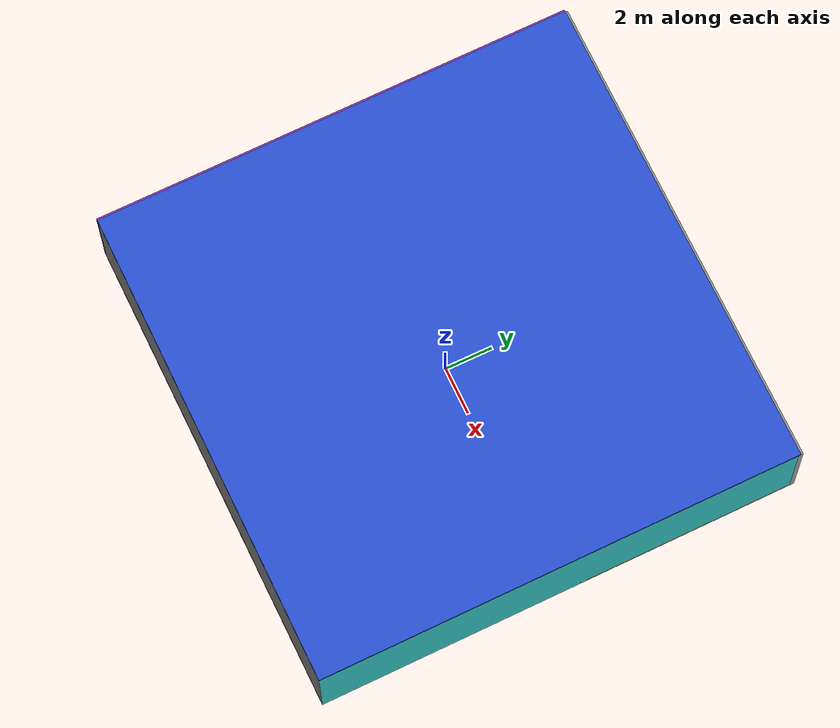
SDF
<sdf version="1.4">
 <world name="default">
  <physics type="ode">
   <max_step_size>0.001</max_step_size>
   <real_time_factor>1</real_time_factor>
   <real_time_update_rate>1000</real_time_update_rate>
   <gravity>0 0 -9.8</gravity>
  </physics>
  <scene><ambient>0.4 0.4 0.4 1</ambient><background>0.7 0.7 0.7 1</background><shadows>1</shadows></scene>
  <model name="Surrounding">
   <static>1</static>
   <link name="Ceiling">
    <collision name="Ceiling_Collision"><geometry><box><size>20 20 0.1</size></box></geometry></collision>
    <visual name="Ceiling_Visual">
     <geometry><box><size>20 20 0.1</size></box></geometry>
     <material>
      <script><uri>file://media/materials/scripts/gazebo.material</uri><name>Gazebo/BlueGlow</name></script>
     </material>
    </visual>
    <pose>0 0 4.05 0 0 0</pose>
   </link>
   <link name="Wall_South">
    <collision name="Wall_South_Collision">
     <geometry><box><size>20 0 4</size></box></geometry>
     <pose>0 0 2 0 -0 0</pose>
    </collision>
    <visual name="Wall_South_Visual">
     <pose>0 0 2 0 -0 0</pose>
     <geometry><box><size>20 0 4</size></box></geometry>
     <material>
      <script><uri>file://media/materials/scripts/gazebo.material</uri><name>Gazebo/GreyGradientSky</name></script>
     </material>
    </visual>
    <velocity_decay><linear>0</linear><angular>0</angular></velocity_decay>
    <pose>0 -10 0 0 -0 0</pose>
   </link>
   <link name="Wall_East">
    <collision name="Wall_21_Collision">
     <geometry><box><size>20 0 4</size></box></geometry>
     <pose>0 0 2 0 -0 0</pose>
    </collision>
    <visual name="Wall_21_Visual">
     <pose>0 0 2 0 -0 0</pose>
     <geometry><box><size>20 0 4</size></box></geometry>
     <material>
      <script><uri>file://media/materials/scripts/gazebo.material</uri><name>Gazebo/TurquoiseGlow</name></script>
     </material>
    </visual>
    <velocity_decay><linear>0</linear><angular>0</angular></velocity_decay>
    <pose>10 0 0 0 -0 1.5708</pose>
   </link>
   <link name="Wall_North">
    <collision name="Wall_22_Collision">
     <geometry><box><size>20 0.2 4</size></box></geometry>
     <pose>0 0 2 0 -0 0</pose>
    </collision>
    <visual name="Wall_22_Visual">
     <pose>0 0 2 0 -0 0</pose>
     <geometry><box><size>20 0.2 4</size></box></geometry>
     <material>
      <script><uri>file://media/materials/scripts/gazebo.material</uri><name>Gazebo/Grey</name></script>
     </material>
    </visual>
    <velocity_decay><linear>0</linear><angular>0</angular></velocity_decay>
    <pose>0 10 0 0 -0 0</pose>
   </link>
   <link name="Wall_West">
    <collision name="Wall_23_Collision">
     <geometry><box><size>20 0.2 4</size></box></geometry>
     <pose>0 0 2 0 -0 0</pose>
    </collision>
    <visual name="Wall_23_Visual">
     <pose>0 0 2 0 -0 0</pose>
     <geometry><box><size>20 0.2 4</size></box></geometry>
     <material>
      <script><uri>file://media/materials/scripts/gazebo.material</uri><name>Gazebo/Purple</name></script>
     </material>
    </visual>
    <velocity_decay><linear>0</linear><angular>0</angular></velocity_decay>
    <pose>-10 0 0 0 0 -1.5708</pose>
   </link>
   <link name="Ground_link">
    <collision name="collision">
     <pose>0 0 .05 0 -0 0</pose>
     <geometry><box><size>20 20 0.1</size></box></geometry>
    </collision>
    <visual name="visual">
     <pose>0 0 .05 0 -0 0</pose>
     <geometry><box><size>20 20 0.1</size></box></geometry>
     <material>
      <script><uri>file://media/materials/scripts/gazebo.material</uri><name>Gazebo/Gold</name></script>
     </material>
    </visual>
   </link>
   <static>1</static>
  </model>
  <spherical_coordinates>
   <surface_model>EARTH_WGS84</surface_model>
   <latitude_deg>0</latitude_deg>
   <longitude_deg>0</longitude_deg>
   <elevation>0</elevation>
   <heading_deg>0</heading_deg>
  </spherical_coordinates>
  <light name="lightball_0" type="diffuse">
   <diffuse>0.8 0.8 0.8 1</diffuse>
   <specular>0.2 0.2 0.2 1</specular>
   <attenuation>
    <range>100</range>
    <constant>0.7</constant>
    <linear>0.01</linear>
    <quadratic>0.001</quadratic>
   </attenuation>
   <direction>-0.5 0.1 -0.9</direction>
   <pose>0.457044754933 9.1698492121 3.7671161299 0 0 0</pose>
  </light>
  <light name="lightball_1" type="diffuse">
   <diffuse>0.8 0.8 0.8 1</diffuse>
   <specular>0.2 0.2 0.2 1</specular>
   <attenuation>
    <range>100</range>
    <constant>0.7</constant>
    <linear>0.01</linear>
    <quadratic>0.001</quadratic>
   </attenuation>
   <direction>-0.5 0.1 -0.9</direction>
   <pose>3.53202292633 7.97571110756 1.01761124459 0 0 0</pose>
  </light>
  <light name="lightball_2" type="diffuse">
   <diffuse>0.8 0.8 0.8 1</diffuse>
   <specular>0.2 0.2 0.2 1</specular>
   <attenuation>
    <range>100</range>
    <constant>0.7</constant>
    <linear>0.01</linear>
    <quadratic>0.001</quadratic>
   </attenuation>
   <direction>-0.5 0.1 -0.9</direction>
   <pose>7.61258744243 -1.76454577149 1.28691344922 0 0 0</pose>
  </light>
  <light name="lightball_3" type="diffuse">
   <diffuse>0.8 0.8 0.8 1</diffuse>
   <specular>0.2 0.2 0.2 1</specular>
   <attenuation>
    <range>100</range>
    <constant>0.7</constant>
    <linear>0.01</linear>
    <quadratic>0.001</quadratic>
   </attenuation>
   <direction>-0.5 0.1 -0.9</direction>
   <pose>-9.54331846673 -3.11794412242 3.53092167294 0 0 0</pose>
  </light>
  <light name="lightball_4" type="diffuse">
   <diffuse>0.8 0.8 0.8 1</diffuse>
   <specular>0.2 0.2 0.2 1</specular>
   <attenuation>
    <range>100</range>
    <constant>0.7</constant>
    <linear>0.01</linear>
    <quadratic>0.001</quadratic>
   </attenuation>
   <direction>-0.5 0.1 -0.9</direction>
   <pose>-4.80224729826 -6.59925880021 0.907482027895 0 0 0</pose>
  </light>
  <light name="lightball_5" type="diffuse">
   <diffuse>0.8 0.8 0.8 1</diffuse>
   <specular>0.2 0.2 0.2 1</specular>
   <attenuation>
    <range>100</range>
    <constant>0.7</constant>
    <linear>0.01</linear>
    <quadratic>0.001</quadratic>
   </attenuation>
   <direction>-0.5 0.1 -0.9</direction>
   <pose>2.80091869359 3.86213781421 3.28304280775 0 0 0</pose>
  </light>
  <light name="lightball_6" type="diffuse">
   <diffuse>0.8 0.8 0.8 1</diffuse>
   <specular>0.2 0.2 0.2 1</specular>
   <attenuation>
    <range>100</range>
    <constant>0.7</constant>
    <linear>0.01</linear>
    <quadratic>0.001</quadratic>
   </attenuation>
   <direction>-0.5 0.1 -0.9</direction>
   <pose>5.39056068909 -2.83767610158 1.78381997427 0 0 0</pose>
  </light>
  <light name="lightball_7" type="diffuse">
   <diffuse>0.8 0.8 0.8 1</diffuse>
   <specular>0.2 0.2 0.2 1</specular>
   <attenuation>
    <range>100</range>
    <constant>0.7</constant>
    <linear>0.01</linear>
    <quadratic>0.001</quadratic>
   </attenuation>
   <direction>-0.5 0.1 -0.9</direction>
   <pose>-9.59058161417 -9.43843983642 3.81293660773 0 0 0</pose>
  </light>
  <light name="lightball_8" type="diffuse">
   <diffuse>0.8 0.8 0.8 1</diffuse>
   <specular>0.2 0.2 0.2 1</specular>
   <attenuation>
    <range>100</range>
    <constant>0.7</constant>
    <linear>0.01</linear>
    <quadratic>0.001</quadratic>
   </attenuation>
   <direction>-0.5 0.1 -0.9</direction>
   <pose>-5.86474568884 3.24660875339 0.795223778585 0 0 0</pose>
  </light>
  <light name="lightball_9" type="diffuse">
   <diffuse>0.8 0.8 0.8 1</diffuse>
   <specular>0.2 0.2 0.2 1</specular>
   <attenuation>
    <range>100</range>
    <constant>0.7</constant>
    <linear>0.01</linear>
    <quadratic>0.001</quadratic>
   </attenuation>
   <direction>-0.5 0.1 -0.9</direction>
   <pose>0.968558805681 -0.505371483589 1.59078035633 0 0 0</pose>
  </light>
  <light name="lightball_10" type="diffuse">
   <diffuse>0.8 0.8 0.8 1</diffuse>
   <specular>0.2 0.2 0.2 1</specular>
   <attenuation>
    <range>100</range>
    <constant>0.7</constant>
    <linear>0.01</linear>
    <quadratic>0.001</quadratic>
   </attenuation>
   <direction>-0.5 0.1 -0.9</direction>
   <pose>-1.08284462714 0.969520194078 0.879943517938 0 0 0</pose>
  </light>
  <light name="lightball_11" type="diffuse">
   <diffuse>0.8 0.8 0.8 1</diffuse>
   <specular>0.2 0.2 0.2 1</specular>
   <attenuation>
    <range>100</range>
    <constant>0.7</constant>
    <linear>0.01</linear>
    <quadratic>0.001</quadratic>
   </attenuation>
   <direction>-0.5 0.1 -0.9</direction>
   <pose>7.4839571271 5.79740774149 1.44363823391 0 0 0</pose>
  </light>
  <light name="lightball_12" type="diffuse">
   <diffuse>0.8 0.8 0.8 1</diffuse>
   <specular>0.2 0.2 0.2 1</specular>
   <attenuation>
    <range>100</range>
    <constant>0.7</constant>
    <linear>0.01</linear>
    <quadratic>0.001</quadratic>
   </attenuation>
   <direction>-0.5 0.1 -0.9</direction>
   <pose>6.48026516416 -9.29862206334 2.51939273933 0 0 0</pose>
  </light>
  <include><uri>model://table</uri><pose>-5.46567012122 -5.5493539828 0 0 0 2.34868135996</pose></include>
  <include>
   <uri>model://textured_shapes</uri>
   <pose>-0.953675720889 7.90597275848 0 0 0 1.65219225244</pose>
  </include>
  <include>
   <uri>model://textured_shapes</uri>
   <pose>1.86873656102 6.54714024295 0 0 0 0.598392445116</pose>
  </include>
  <include>
   <uri>model://construction_cone</uri>
   <pose>5.15328406698 5.44356199683 0 0 0 2.27263648111</pose>
  </include>
  <include>
   <uri>model://robocup_3Dsim_goal</uri>
   <pose>5.45076594939 6.90299766956 0 0 0 2.55944934462</pose>
  </include>
 </world>
</sdf>

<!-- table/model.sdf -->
<sdf version="1.5">
  <model name="table">
    <static>true</static>
    <link name="link">
      <collision name="surface">
        <pose>0 0 1.0 0 0 0</pose>
        <geometry>
          <box>
            <size>1.5 0.8 0.03</size>
          </box>
        </geometry>
        <surface>
          <friction>
            <ode>
              <mu>0.6</mu>
              <mu2>0.6</mu2>
            </ode>
          </friction>
        </surface>
      </collision>
      <visual name="visual1">
        <pose>0 0 1.0 0 0 0</pose>
        <geometry>
          <box>
            <size>1.5 0.8 0.03</size>
          </box>
        </geometry>
        <material>
          <script>
            <uri>model://media/materials/scripts/gazebo.material</uri>
            <name>Gazebo/Wood</name>
          </script>
        </material>
      </visual>
      <collision name="front_left_leg">
        <pose>0.68 0.38 0.5 0 0 0</pose>
        <geometry>
          <cylinder>
            <radius>0.02</radius>
            <length>1.0</length>
          </cylinder>
        </geometry>
      </collision>
      <visual name="front_left_leg">
        <pose>0.68 0.38 0.5 0 0 0</pose>
        <geometry>
          <cylinder>
            <radius>0.02</radius>
            <length>1.0</length>
          </cylinder>
        </geometry>
        <material>
          <script>
            <uri>model://media/materials/scripts/gazebo.material</uri>
            <name>Gazebo/Grey</name>
          </script>
        </material>
      </visual>
      <collision name="front_right_leg">
        <pose>0.68 -0.38 0.5 0 0 0</pose>
        <geometry>
          <cylinder>
            <radius>0.02</radius>
            <length>1.0</length>
          </cylinder>
        </geometry>
      </collision>
      <visual name="front_right_leg">
        <pose>0.68 -0.38 0.5 0 0 0</pose>
        <geometry>
          <cylinder>
            <radius>0.02</radius>
            <length>1.0</length>
          </cylinder>
        </geometry>
        <material>
          <script>
            <uri>model://media/materials/scripts/gazebo.material</uri>
            <name>Gazebo/Grey</name>
          </script>
        </material>
      </visual>
      <collision name="back_right_leg">
        <pose>-0.68 -0.38 0.5 0 0 0</pose>
        <geometry>
          <cylinder>
            <radius>0.02</radius>
            <length>1.0</length>
          </cylinder>
        </geometry>
      </collision>
      <visual name="back_right_leg">
        <pose>-0.68 -0.38 0.5 0 0 0</pose>
        <geometry>
          <cylinder>
            <radius>0.02</radius>
            <length>1.0</length>
          </cylinder>
        </geometry>
        <material>
          <script>
            <uri>model://media/materials/scripts/gazebo.material</uri>
            <name>Gazebo/Grey</name>
          </script>
        </material>
      </visual>
      <collision name="back_left_leg">
        <pose>-0.68 0.38 0.5 0 0 0</pose>
        <geometry>
          <cylinder>
            <radius>0.02</radius>
            <length>1.0</length>
          </cylinder>
        </geometry>
      </collision>
      <visual name="back_left_leg">
        <pose>-0.68 0.38 0.5 0 0 0</pose>
        <geometry>
          <cylinder>
            <radius>0.02</radius>
            <length>1.0</length>
          </cylinder>
        </geometry>
        <material>
          <script>
            <uri>model://media/materials/scripts/gazebo.material</uri>
            <name>Gazebo/Grey</name>
          </script>
        </material>
      </visual>
    </link>
  </model>
</sdf>

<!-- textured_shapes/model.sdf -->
<sdf version="1.6">
  <model name="textured_shapes">
    <pose>0 0 0.5 0 0 0</pose>
    <link name="box">
      <pose>0 -1.5 0 0 0 0</pose>
      <collision name="collision">
        <geometry>
          <box>
            <size>1 1 1</size>
          </box>
        </geometry>
      </collision>
      <visual name="visual">
        <geometry>
          <box>
            <size>1 1 1</size>
          </box>
        </geometry>
        <material>
          <script>
            <uri>model://../model_source/models/textured_shapes/materials/scripts</uri>
            <uri>model://../model_source/models/textured_shapes/materials/textures</uri>
            <name>TexturedShape/Squares</name>
          </script>
        </material>
      </visual>
    </link>
    <link name="sphere">
      <collision name="collision">
        <geometry>
          <sphere>
            <radius>0.5</radius>
          </sphere>
        </geometry>
      </collision>
      <visual name="visual">
        <geometry>
          <sphere>
            <radius>0.5</radius>
          </sphere>
        </geometry>
        <material>
          <script>
            <uri>model://../model_source/models/textured_shapes/materials/scripts</uri>
            <uri>model://../model_source/models/textured_shapes/materials/textures</uri>
            <name>TexturedShape/Squares</name>
          </script>
        </material>
      </visual>
    </link>
    <link name="cylinder">
      <pose>0 1.5 0 0 0 0</pose>
      <collision name="collision">
        <geometry>
          <cylinder>
            <radius>0.5</radius>
            <length>1</length>
          </cylinder>
        </geometry>
      </collision>
      <visual name="visual">
        <geometry>
          <cylinder>
            <radius>0.5</radius>
            <length>1</length>
          </cylinder>
        </geometry>
        <material>
          <script>
            <uri>model://../model_source/models/textured_shapes/materials/scripts</uri>
            <uri>model://../model_source/models/textured_shapes/materials/textures</uri>
            <name>TexturedShape/Squares</name>
          </script>
        </material>
      </visual>
    </link>
  </model>
</sdf>

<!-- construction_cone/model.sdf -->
<sdf version="1.5">
  <model name="Construction Cone">
    <link name="link">
      <collision name="collision">
        <geometry>
          <mesh>
            <scale>10 10 10</scale>
            <uri>file://isr-testbed/construction_cone/meshes/construction_cone.dae</uri>
          </mesh>
        </geometry>
      </collision>
      <visual name="visual">
        <geometry>
          <mesh>
            <scale>10 10 10</scale>
            <uri>file://isr-testbed/construction_cone/meshes/construction_cone.dae</uri>
          </mesh>
        </geometry>
      </visual>
    </link>
  </model>
</sdf>

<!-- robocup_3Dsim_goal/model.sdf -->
<sdf version="1.5">
  <model name="robocup_3d_goal">
    <static>true</static>
    <link name="left_post">
      <pose>0 1.05 0.45 0 0 0</pose>
      <collision name="collision">
        <geometry>
          <cylinder>
            <radius>0.05</radius>
            <length>0.9</length>
          </cylinder>
        </geometry>
      </collision>
      <visual name="visual">
        <geometry>
          <cylinder>
            <radius>0.05</radius>
            <length>0.9</length>
          </cylinder>
        </geometry>
        <material>
          <script>
            <uri>file://media/materials/scripts/gazebo.material</uri>
            <name>Gazebo/ZincYellow</name>
          </script>
        </material>
      </visual>
    </link>
    <link name="left_support_horiz_lower">
      <pose>0.30 1.05 0.01 0 0 0</pose>
      <collision name="collision">
        <geometry>
          <box>
            <size>0.50 0.02 0.02</size>
          </box>
        </geometry>
      </collision>
      <visual name="visual">
        <geometry>
          <box>
            <size>0.50 0.02 0.02</size>
          </box>
        </geometry>
        <material>
          <script>
            <uri>file://media/materials/scripts/gazebo.material</uri>
            <name>Gazebo/White</name>
          </script>
        </material>
      </visual>
    </link>
    <link name="left_support_horiz_upper">
      <pose>0.30 1.05 0.79 0 0 0</pose>
      <collision name="collision">
        <geometry>
          <box>
            <size>0.50 0.02 0.02</size>
          </box>
        </geometry>
      </collision>
      <visual name="visual">
        <geometry>
          <box>
            <size>0.50 0.02 0.02</size>
          </box>
        </geometry>
        <material>
          <script>
            <uri>file://media/materials/scripts/gazebo.material</uri>
            <name>Gazebo/White</name>
          </script>
        </material>
      </visual>
    </link>
    <link name="left_support_vertical">
      <pose>0.56 1.05 0.4 0 1.5708 0</pose>
      <collision name="collision">
        <geometry>
          <box>
            <size>0.80 0.02 0.02</size>
          </box>
        </geometry>
      </collision>
      <visual name="visual">
        <geometry>
          <box>
            <size>0.80 0.02 0.02</size>
          </box>
        </geometry>
        <material>
          <script>
            <uri>file://media/materials/scripts/gazebo.material</uri>
            <name>Gazebo/White</name>
          </script>
        </material>
      </visual>
    </link>
    <link name="right_support_horiz_lower">
      <pose>0.30 -1.05 0.01 0 0 0</pose>
      <collision name="collision">
        <geometry>
          <box>
            <size>0.50 0.02 0.02</size>
          </box>
        </geometry>
      </collision>
      <visual name="visual">
        <geometry>
          <box>
            <size>0.50 0.02 0.02</size>
          </box>
        </geometry>
        <material>
          <script>
            <uri>file://media/materials/scripts/gazebo.material</uri>
            <name>Gazebo/White</name>
          </script>
        </material>
      </visual>
    </link>
    <link name="right_support_horiz_upper">
      <pose>0.30 -1.05 0.79 0 0 0</pose>
      <collision name="collision">
        <geometry>
          <box>
            <size>0.50 0.02 0.02</size>
          </box>
        </geometry>
      </collision>
      <visual name="visual">
        <geometry>
          <box>
            <size>0.50 0.02 0.02</size>
          </box>
        </geometry>
        <material>
          <script>
            <uri>file://media/materials/scripts/gazebo.material</uri>
            <name>Gazebo/White</name>
          </script>
        </material>
      </visual>
    </link>
    <link name="right_support_vertical">
      <pose>0.56 -1.05 0.4 0 1.5708 0</pose>
      <collision name="collision">
        <geometry>
          <box>
            <size>0.80 0.02 0.02</size>
          </box>
        </geometry>
      </collision>
      <visual name="visual">
        <geometry>
          <box>
            <size>0.80 0.02 0.02</size>
          </box>
        </geometry>
        <material>
          <script>
            <uri>file://media/materials/scripts/gazebo.material</uri>
            <name>Gazebo/White</name>
          </script>
        </material>
      </visual>
    </link>
    <link name="center_support_horiz_lower">
      <pose>0.56 0 0.01 0 1.5708 0</pose>
      <collision name="collision">
        <geometry>
          <box>
            <size>0.02 2.08 0.02</size>
          </box>
        </geometry>
      </collision>
      <visual name="visual">
        <geometry>
          <box>
            <size>0.02 2.08 0.02</size>
          </box>
        </geometry>
        <material>
          <script>
            <uri>file://media/materials/scripts/gazebo.material</uri>
            <name>Gazebo/White</name>
          </script>
        </material>
      </visual>
    </link>
    <link name="center_support_horiz_upper">
      <pose>0.56 0 0.79 0 1.5708 0</pose>
      <collision name="collision">
        <geometry>
          <box>
            <size>0.02 2.08 0.02</size>
          </box>
        </geometry>
      </collision>
      <visual name="visual">
        <geometry>
          <box>
            <size>0.02 2.08 0.02</size>
          </box>
        </geometry>
        <material>
          <script>
            <uri>file://media/materials/scripts/gazebo.material</uri>
            <name>Gazebo/White</name>
          </script>
        </material>
      </visual>
    </link>
    <link name="right_post">
      <pose>0 -1.05 0.45 0 0 0</pose>
      <collision name="collision">
        <geometry>
          <cylinder>
            <radius>0.05</radius>
            <length>0.9</length>
          </cylinder>
        </geometry>
      </collision>
      <visual name="visual">
        <geometry>
          <cylinder>
            <radius>0.05</radius>
            <length>0.9</length>
          </cylinder>
        </geometry>
        <material>
          <script>
            <uri>file://media/materials/scripts/gazebo.material</uri>
            <name>Gazebo/ZincYellow</name>
          </script>
        </material>
      </visual>
    </link>
    <link name="crossbar">
      <pose>0 0 0.85 1.57 1.57 0</pose>
      <collision name="collision">
        <geometry>
          <cylinder>
            <radius>0.05</radius>
            <length>2.0</length>
          </cylinder>
        </geometry>
      </collision>
      <visual name="visual">
        <geometry>
          <cylinder>
            <radius>0.05</radius>
            <length>2.0</length>
          </cylinder>
        </geometry>
        <material>
          <script>
            <uri>file://media/materials/scripts/gazebo.material</uri>
            <name>Gazebo/ZincYellow</name>
          </script>
        </material>
      </visual>
    </link>
    <link name="center_net">
      <pose>0.56 0 0.40 0 0 0</pose>
      <collision name="collision">
        <geometry>
          <box>
            <size>0.01 2.1 0.80</size>
          </box>
        </geometry>
      </collision>
      <visual name="visual">
        <geometry>
          <box>
            <size>0.01 2.1 0.80</size>
          </box>
        </geometry>
        <material>
          <script>
            <uri>model://../model_source/models/robocup09_spl_field/materials/scripts/</uri>
            <uri>model://../model_source/models/robocup09_spl_field/materials/textures/</uri>
            <name>RoboCup/Net</name>
          </script>
        </material>
      </visual>
    </link>
    <link name="left_net">
      <pose>0.30 1.05 0.40 0 0 0</pose>
      <collision name="collision">
        <geometry>
          <box>
            <size>0.50 0.01 0.76</size>
          </box>
        </geometry>
      </collision>
      <visual name="visual">
        <geometry>
          <box>
            <size>0.50 0.01 0.76</size>
          </box>
        </geometry>
        <material>
          <script>
            <uri>model://../model_source/models/robocup09_spl_field/materials/scripts/</uri>
            <uri>model://../model_source/models/robocup09_spl_field/materials/textures/</uri>
            <name>RoboCup/Net</name>
          </script>
        </material>
      </visual>
    </link>
    <link name="right_net">
      <pose>0.30 -1.05 0.40 0 0 0</pose>
      <collision name="collision">
        <geometry>
          <box>
            <size>0.50 0.01 0.76</size>
          </box>
        </geometry>
      </collision>
      <visual name="visual">
        <geometry>
          <box>
            <size>0.50 0.01 0.76</size>
          </box>
        </geometry>
        <material>
          <script>
            <uri>model://../model_source/models/robocup09_spl_field/materials/scripts/</uri>
            <uri>model://../model_source/models/robocup09_spl_field/materials/textures/</uri>
            <name>RoboCup/Net</name>
          </script>
        </material>
      </visual>
    </link>
  </model>
</sdf>
